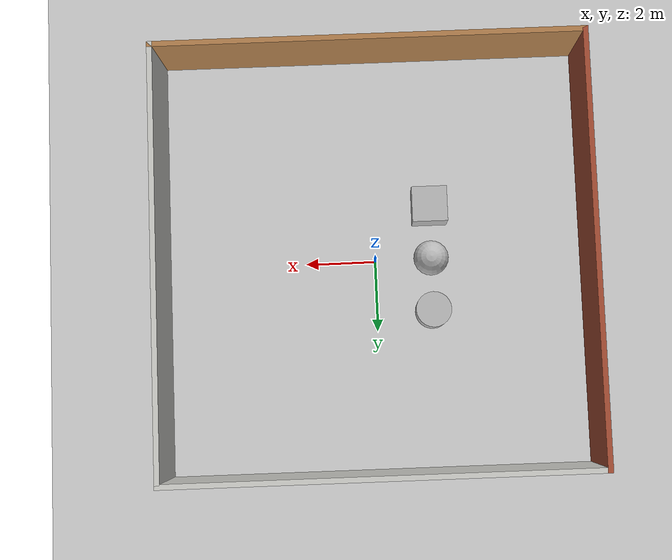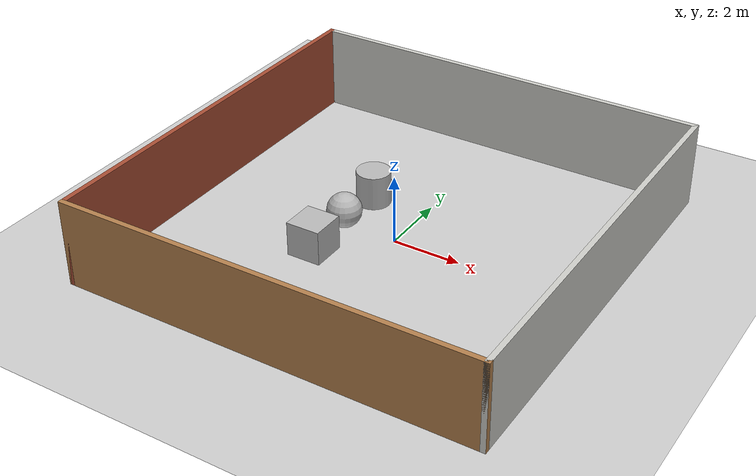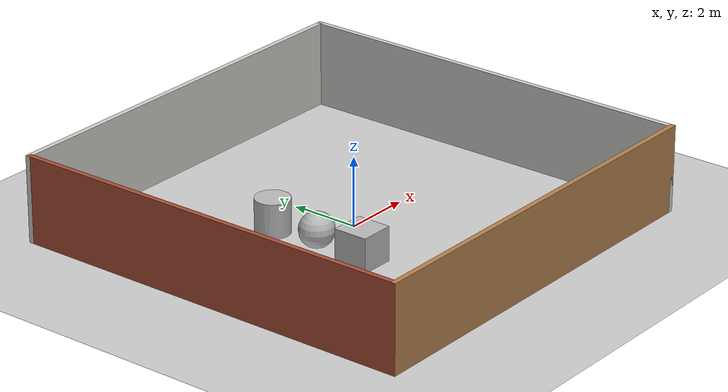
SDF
<sdf version="1.6">
 <world name="default">
  <light name="sun" type="directional">
   <pose>0 0 10 0 -0 0</pose>
   <diffuse>0.8 0.8 0.8 1</diffuse>
   <specular>0.2 0.2 0.2 1</specular>
   <attenuation>
    <range>1000</range>
    <constant>0.9</constant>
    <linear>0.01</linear>
    <quadratic>0.001</quadratic>
   </attenuation>
   <direction>-0.5 0.1 -0.9</direction>
  </light>
  <model name="ground_plane">
   <static>1</static>
   <link name="link">
    <collision name="collision">
     <geometry><plane><normal>0 0 1</normal><size>100 100</size></plane></geometry>
     <surface>
      <contact><collide_bitmask>65535</collide_bitmask></contact>
      <friction><ode><mu>100</mu><mu2>50</mu2></ode></friction>
     </surface>
    </collision>
    <visual name="visual">
     <cast_shadows>0</cast_shadows>
     <geometry><plane><normal>0 0 1</normal><size>100 100</size></plane></geometry>
     <material>
      <script><uri>file://media/materials/scripts/gazebo.material</uri><name>Gazebo/Grey</name></script>
     </material>
    </visual>
   </link>
  </model>
  <gravity>0 0 -9.8</gravity>
  <magnetic_field>6e-06 2.3e-05 -4.2e-05</magnetic_field>
  <atmosphere type="adiabatic"/>
  <physics name="default_physics" default="0" type="ode">
   <max_step_size>0.001</max_step_size>
   <real_time_factor>1</real_time_factor>
   <real_time_update_rate>1000</real_time_update_rate>
  </physics>
  <scene><ambient>0.4 0.4 0.4 1</ambient><background>0.7 0.7 0.7 1</background><shadows>1</shadows></scene>
  <spherical_coordinates>
   <surface_model>EARTH_WGS84</surface_model>
   <latitude_deg>0</latitude_deg>
   <longitude_deg>0</longitude_deg>
   <elevation>0</elevation>
   <heading_deg>0</heading_deg>
  </spherical_coordinates>
  <model name="MyWorld">
   <link name="Wall_0">
    <collision name="Wall_0_Collision">
     <geometry><box><size>12.15 0.15 2.5</size></box></geometry>
     <pose>0 0 1.25 0 -0 0</pose>
    </collision>
    <visual name="Wall_0_Visual">
     <pose>0 0 1.25 0 -0 0</pose>
     <geometry><box><size>12.15 0.15 2.5</size></box></geometry>
     <material>
      <script><uri>file://media/materials/scripts/gazebo.material</uri><name>Gazebo/CeilingTiled</name></script>
      <ambient>1 1 1 1</ambient>
     </material>
     <meta><layer>0</layer></meta>
    </visual>
    <pose>0 6 0 0 -0 0</pose>
   </link>
   <link name="Wall_2">
    <collision name="Wall_2_Collision">
     <geometry><box><size>12.15 0.15 2.5</size></box></geometry>
     <pose>0 0 1.25 0 -0 0</pose>
    </collision>
    <visual name="Wall_2_Visual">
     <pose>0 0 1.25 0 -0 0</pose>
     <geometry><box><size>12.15 0.15 2.5</size></box></geometry>
     <material>
      <script><uri>file://media/materials/scripts/gazebo.material</uri><name>Gazebo/Bricks</name></script>
      <ambient>0.760784 0.662745 0.627451 1</ambient>
     </material>
     <meta><layer>0</layer></meta>
    </visual>
    <pose>-6 0 0 0 0 -1.5708</pose>
   </link>
   <link name="Wall_4">
    <collision name="Wall_4_Collision">
     <geometry><box><size>12.15 0.15 2.5</size></box></geometry>
     <pose>0 0 1.25 0 -0 0</pose>
    </collision>
    <visual name="Wall_4_Visual">
     <pose>0 0 1.25 0 -0 0</pose>
     <geometry><box><size>12.15 0.15 2.5</size></box></geometry>
     <material>
      <script><uri>file://media/materials/scripts/gazebo.material</uri><name>Gazebo/Wood</name></script>
      <ambient>0.996078 0.47451 0.0196078 1</ambient>
     </material>
     <meta><layer>0</layer></meta>
    </visual>
    <pose>0 -6 0 0 -0 0</pose>
   </link>
   <link name="Wall_6">
    <collision name="Wall_6_Collision">
     <geometry><box><size>12.15 0.15 2.5</size></box></geometry>
     <pose>0 0 1.25 0 -0 0</pose>
    </collision>
    <visual name="Wall_6_Visual">
     <pose>0 0 1.25 0 -0 0</pose>
     <geometry><box><size>12.15 0.15 2.5</size></box></geometry>
     <material>
      <script><uri>file://media/materials/scripts/gazebo.material</uri><name>Gazebo/CeilingTiled</name></script>
      <ambient>0.435294 0.796078 0.67451 1</ambient>
     </material>
     <meta><layer>0</layer></meta>
    </visual>
    <pose>6 0 0 0 0 -1.5708</pose>
   </link>
   <static>1</static>
  </model>
  <model name="textured_shapes">
   <pose>-1.59133 -0.020826 0.5 0 -0 0</pose>
   <link name="box">
    <pose>0 -1.5 0 0 -0 0</pose>
    <collision name="collision"><geometry><box><size>1 1 1</size></box></geometry></collision>
    <visual name="visual">
     <geometry><box><size>1 1 1</size></box></geometry>
     <material>
      <script>
       <uri>model://textured_shapes/materials/scripts</uri>
       <uri>model://textured_shapes/materials/textures</uri>
       <name>TexturedShape/Squares</name>
      </script>
     </material>
    </visual>
    <inertial>
     <inertia><ixx>1</ixx><ixy>0</ixy><ixz>0</ixz><iyy>1</iyy><iyz>0</iyz><izz>1</izz></inertia>
     <mass>1</mass>
    </inertial>
   </link>
   <link name="sphere">
    <collision name="collision"><geometry><sphere><radius>0.5</radius></sphere></geometry></collision>
    <visual name="visual">
     <geometry><sphere><radius>0.5</radius></sphere></geometry>
     <material>
      <script>
       <uri>model://textured_shapes/materials/scripts</uri>
       <uri>model://textured_shapes/materials/textures</uri>
       <name>TexturedShape/Squares</name>
      </script>
     </material>
    </visual>
    <inertial>
     <inertia><ixx>1</ixx><ixy>0</ixy><ixz>0</ixz><iyy>1</iyy><iyz>0</iyz><izz>1</izz></inertia>
     <mass>1</mass>
    </inertial>
   </link>
   <link name="cylinder">
    <pose>0 1.5 0 0 -0 0</pose>
    <collision name="collision">
     <geometry><cylinder><radius>0.5</radius><length>1</length></cylinder></geometry>
    </collision>
    <visual name="visual">
     <geometry><cylinder><radius>0.5</radius><length>1</length></cylinder></geometry>
     <material>
      <script>
       <uri>model://textured_shapes/materials/scripts</uri>
       <uri>model://textured_shapes/materials/textures</uri>
       <name>TexturedShape/Squares</name>
      </script>
     </material>
    </visual>
    <inertial>
     <inertia><ixx>1</ixx><ixy>0</ixy><ixz>0</ixz><iyy>1</iyy><iyz>0</iyz><izz>1</izz></inertia>
     <mass>1</mass>
    </inertial>
   </link>
  </model>
 </world>
</sdf>
